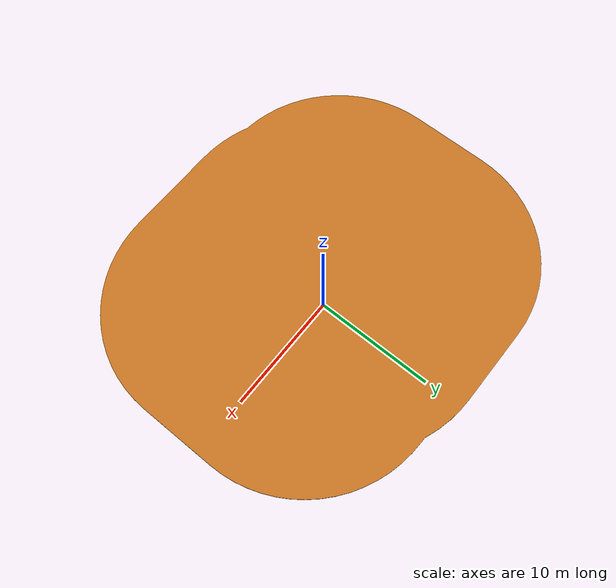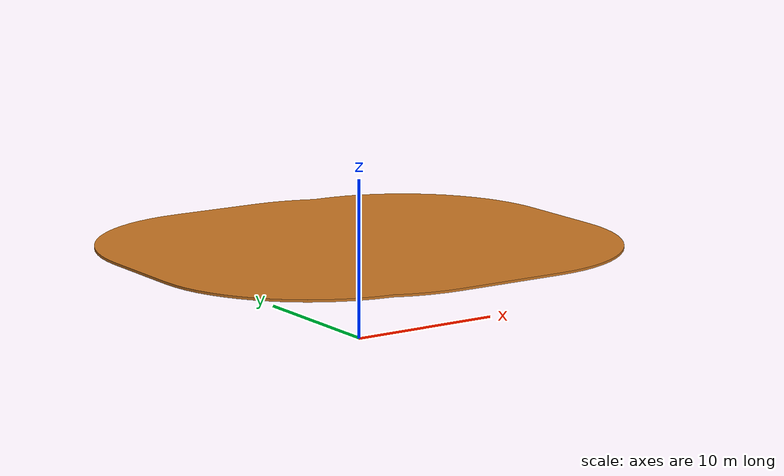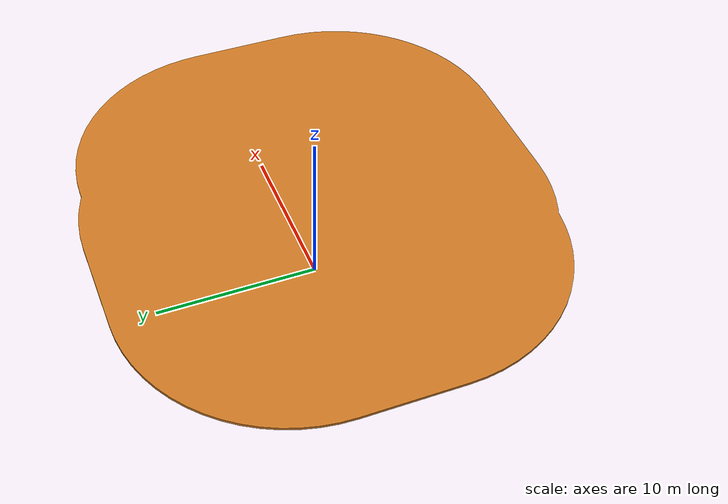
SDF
<?xml version="1.0" ?>
<sdf version="1.6">
  <model name="ceiling_2">
    <pose frame="">0 0 6 0 -0 0</pose>
    <static>1</static>
    <self_collide>0</self_collide>
    <allow_auto_disable>0</allow_auto_disable>
    <link name="mesh">
      <kinematic>0</kinematic>
      <gravity>1</gravity>
      <self_collide>0</self_collide>
      <collision name="collision">
        <geometry>
          <mesh>
            <uri>model://ceiling_2/meshes/blxqPNCRUC.stl</uri>
            <scale>1 1 1</scale>
          </mesh>
        </geometry>
        <pose frame="">-6.23217 -9.14834 -0.075 0 -0 0</pose>
        <max_contacts>20</max_contacts>
      </collision>
      <visual name="visual">
        <geometry>
          <mesh>
            <uri>model://ceiling_2/meshes/uKiMVXZhvT.stl</uri>
            <scale>1 1 1</scale>
          </mesh>
        </geometry>
        <material>
          <ambient>0.796078 0.466667 0.137255 1</ambient>
          <diffuse>0.796078431372549 0.4666666666666667 0.13725490196078433 1</diffuse>
        </material>
        <pose frame="">-6.23217 -9.14834 -0.075 0 -0 0</pose>
        <cast_shadows>1</cast_shadows>
        <transparency>0.0</transparency>
      </visual>
      <pose frame="">0 0 0 0 -0 0</pose>
    </link>
  </model>
</sdf>
